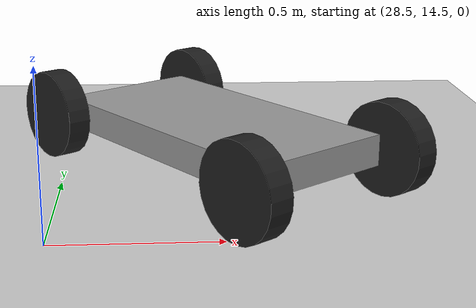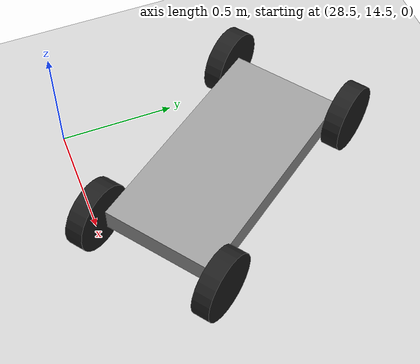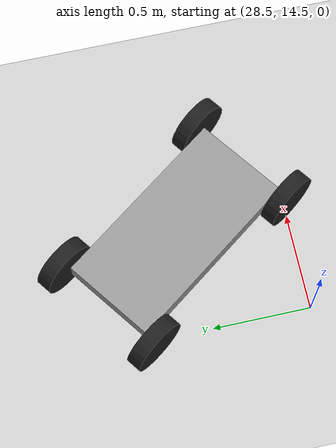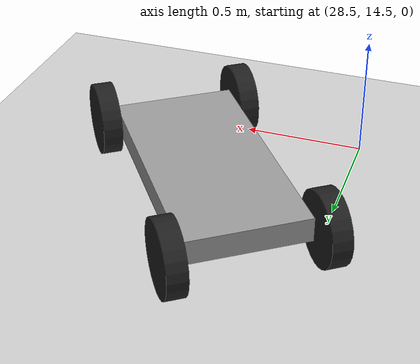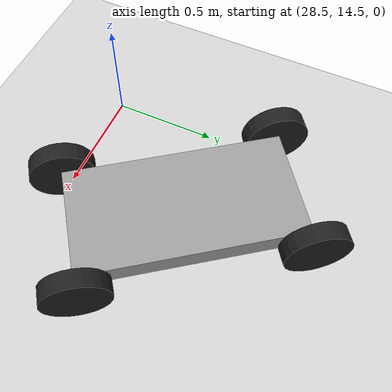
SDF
<sdf version="1.7">
 <world name="default">
  <model name="ground_plane">
   <static>1</static>
   <link name="link">
    <collision name="collision">
     <geometry><plane><normal>0 0 1</normal><size>300 300</size></plane></geometry>
     <surface><friction><ode><mu>100</mu><mu2>50</mu2></ode></friction></surface>
    </collision>
    <visual name="visual">
     <cast_shadows>0</cast_shadows>
     <geometry><plane><normal>0 0 1</normal><size>300 300</size></plane></geometry>
     <material>
      <script><uri>file://media/materials/scripts/gazebo.material</uri><name>Gazebo/Grey</name></script>
     </material>
    </visual>
   </link>
  </model>
  <model name="cart_front_steer">
   <link name="chassis">
    <pose>0 0 0.15 0 -0 0</pose>
    <inertial>
     <pose>0.1 0 0 0 -0 0</pose>
     <mass>10</mass>
     <inertia>
      <ixx>0.216667</ixx>
      <iyy>0.841667</iyy>
      <izz>1.04167</izz>
      <ixy>0</ixy>
      <ixz>0</ixz>
      <iyz>0</iyz>
     </inertia>
    </inertial>
    <collision name="collision"><geometry><box><size>1 0.5 0.1</size></box></geometry></collision>
    <visual name="visual">
     <geometry><box><size>1 0.5 0.1</size></box></geometry>
     <material>
      <script><uri>file://media/materials/scripts/gazebo.material</uri><name>Gazebo/Grey</name></script>
     </material>
    </visual>
   </link>
   <link name="wheel_front_left">
    <pose>0.5 0.298 0.15 -1.5708 -0.087266 0</pose>
    <inertial>
     <mass>0.5</mass>
     <inertia>
      <ixx>0.00307917</ixx>
      <iyy>0.00307917</iyy>
      <izz>0.005625</izz>
      <ixy>0</ixy>
      <ixz>0</ixz>
      <iyz>0</iyz>
     </inertia>
    </inertial>
    <collision name="collision">
     <geometry><cylinder><radius>0.15</radius><length>0.08</length></cylinder></geometry>
    </collision>
    <visual name="visual">
     <geometry><cylinder><radius>0.15</radius><length>0.08</length></cylinder></geometry>
     <material>
      <script><uri>file://media/materials/scripts/gazebo.material</uri><name>Gazebo/Black</name></script>
     </material>
    </visual>
   </link>
   <joint name="wheel_front_left_steer_spin" type="universal">
    <parent>chassis</parent>
    <child>wheel_front_left</child>
    <axis>
     <xyz>0 -1 0</xyz>
     <limit><lower>-0.610865</lower><upper>0.610865</upper></limit>
     <dynamics><spring_reference>0</spring_reference><spring_stiffness>0</spring_stiffness></dynamics>
    </axis>
    <axis2>
     <xyz>0 0 1</xyz>
     <limit><upper>1e+16</upper><lower>-1e+16</lower></limit>
     <dynamics><spring_reference>0</spring_reference><spring_stiffness>0</spring_stiffness></dynamics>
    </axis2>
   </joint>
   <link name="wheel_front_right">
    <pose>0.5 -0.298 0.15 -1.5708 -0.087266 0</pose>
    <inertial>
     <mass>0.5</mass>
     <inertia>
      <ixx>0.00307917</ixx>
      <iyy>0.00307917</iyy>
      <izz>0.005625</izz>
      <ixy>0</ixy>
      <ixz>0</ixz>
      <iyz>0</iyz>
     </inertia>
    </inertial>
    <collision name="collision">
     <geometry><cylinder><radius>0.15</radius><length>0.08</length></cylinder></geometry>
    </collision>
    <visual name="visual">
     <geometry><cylinder><radius>0.15</radius><length>0.08</length></cylinder></geometry>
     <material>
      <script><uri>file://media/materials/scripts/gazebo.material</uri><name>Gazebo/Black</name></script>
     </material>
    </visual>
   </link>
   <joint name="wheel_front_right_steer_spin" type="universal">
    <parent>chassis</parent>
    <child>wheel_front_right</child>
    <axis>
     <xyz>0 -1 0</xyz>
     <limit><lower>-0.610865</lower><upper>0.610865</upper></limit>
     <dynamics><spring_reference>0</spring_reference><spring_stiffness>0</spring_stiffness></dynamics>
    </axis>
    <axis2>
     <xyz>0 0 1</xyz>
     <limit><upper>1e+16</upper><lower>-1e+16</lower></limit>
     <dynamics><spring_reference>0</spring_reference><spring_stiffness>0</spring_stiffness></dynamics>
    </axis2>
   </joint>
   <link name="wheel_rear_left">
    <pose>-0.5 0.298 0.15 -1.5708 0 0</pose>
    <inertial>
     <mass>0.5</mass>
     <inertia>
      <ixx>0.00307917</ixx>
      <iyy>0.00307917</iyy>
      <izz>0.005625</izz>
      <ixy>0</ixy>
      <ixz>0</ixz>
      <iyz>0</iyz>
     </inertia>
    </inertial>
    <collision name="collision">
     <geometry><cylinder><radius>0.15</radius><length>0.08</length></cylinder></geometry>
    </collision>
    <visual name="visual">
     <geometry><cylinder><radius>0.15</radius><length>0.08</length></cylinder></geometry>
     <material>
      <script><uri>file://media/materials/scripts/gazebo.material</uri><name>Gazebo/Black</name></script>
     </material>
    </visual>
   </link>
   <joint name="wheel_rear_left_spin" type="revolute">
    <parent>chassis</parent>
    <child>wheel_rear_left</child>
    <axis>
     <xyz>0 0 1</xyz>
     <limit><lower>-1e+16</lower><upper>1e+16</upper></limit>
     <dynamics><spring_reference>0</spring_reference><spring_stiffness>0</spring_stiffness></dynamics>
    </axis>
   </joint>
   <link name="wheel_rear_right">
    <pose>-0.5 -0.298 0.15 -1.5708 0 0</pose>
    <inertial>
     <mass>0.5</mass>
     <inertia>
      <ixx>0.00307917</ixx>
      <iyy>0.00307917</iyy>
      <izz>0.005625</izz>
      <ixy>0</ixy>
      <ixz>0</ixz>
      <iyz>0</iyz>
     </inertia>
    </inertial>
    <collision name="collision">
     <geometry><cylinder><radius>0.15</radius><length>0.08</length></cylinder></geometry>
    </collision>
    <visual name="visual">
     <geometry><cylinder><radius>0.15</radius><length>0.08</length></cylinder></geometry>
     <material>
      <script><uri>file://media/materials/scripts/gazebo.material</uri><name>Gazebo/Black</name></script>
     </material>
    </visual>
   </link>
   <joint name="wheel_rear_right_spin" type="revolute">
    <parent>chassis</parent>
    <child>wheel_rear_right</child>
    <axis>
     <xyz>0 0 1</xyz>
     <limit><lower>-1e+16</lower><upper>1e+16</upper></limit>
     <dynamics><spring_reference>0</spring_reference><spring_stiffness>0</spring_stiffness></dynamics>
    </axis>
   </joint>
   <pose>28.9941 15.0822 0.000189 0.00023 -0.001095 -0.940031</pose>
  </model>
 </world>
</sdf>
